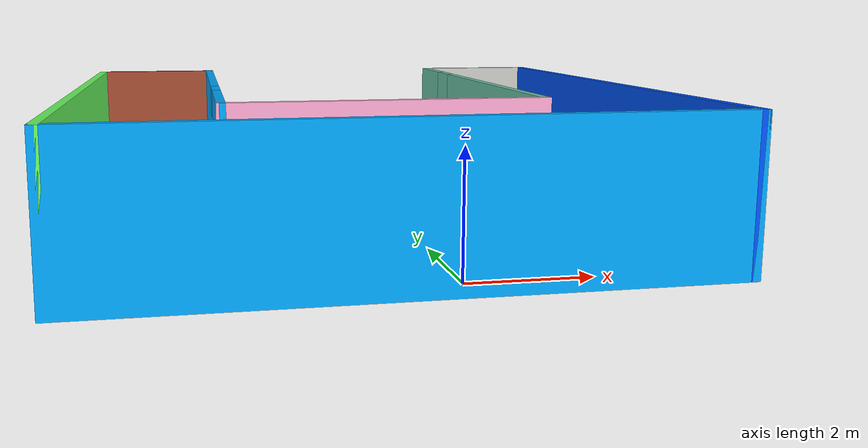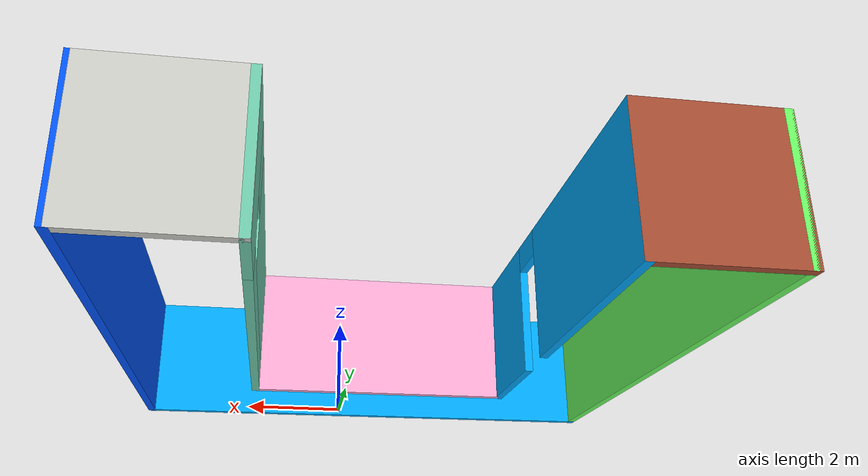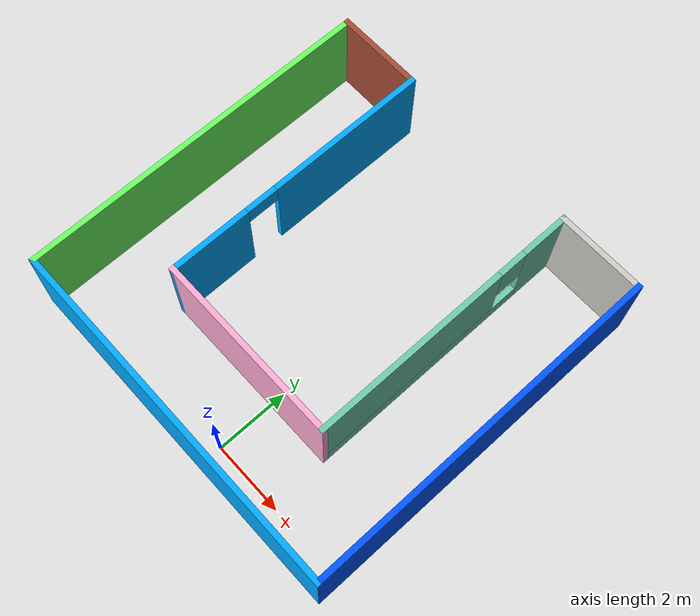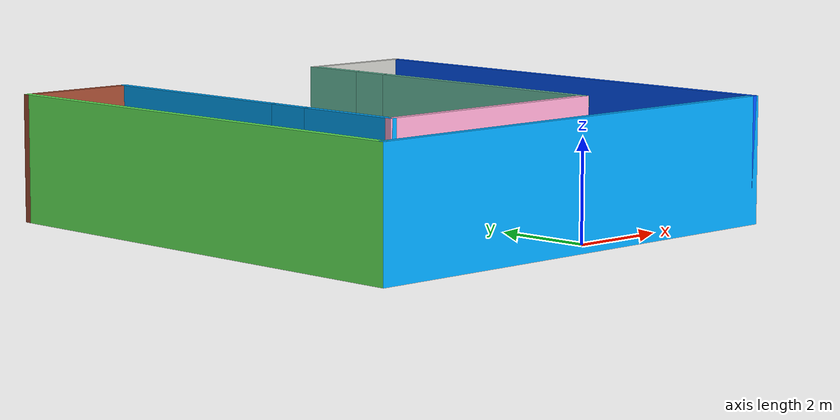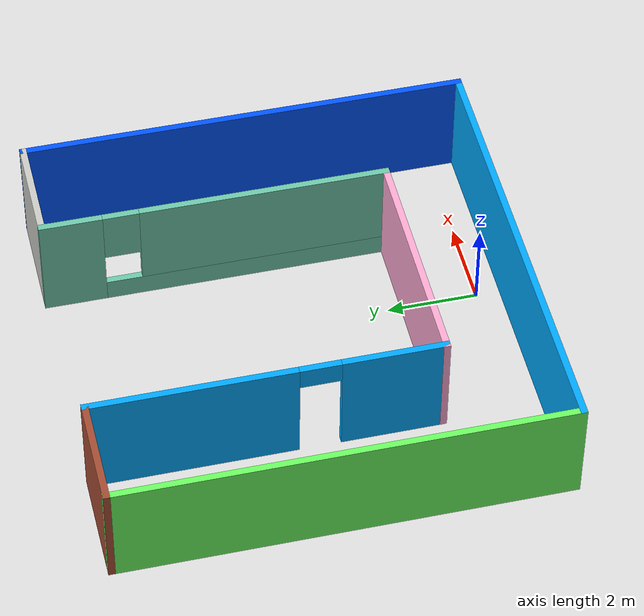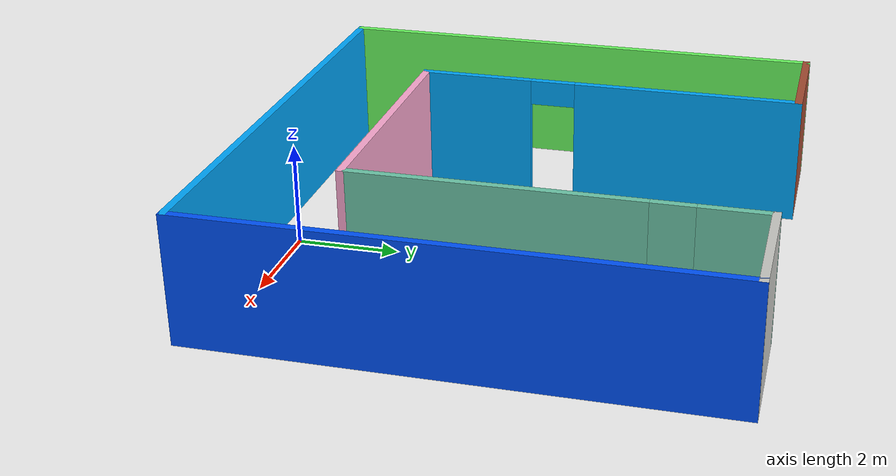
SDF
<?xml version='1.0'?>
<sdf version='1.6'>
  <model name='simpleU'>
    <pose frame=''>-0.747588 4.32082 0 0 -0 0</pose>
    <link name='Wall_10'>
      <pose frame=''>-2.575 1.12481 0 0 0 -1.5708</pose>
      <visual name='Wall_10_Visual_0'>
        <pose frame=''>-1.60329 0 1.25 0 -0 0</pose>
        <geometry>
          <box>
            <size>4.54341 0.15 2.5</size>
          </box>
        </geometry>
        <material>
          <script>
            <uri>file://media/materials/scripts/gazebo.material</uri>
            <name>Gazebo/Grey</name>
          </script>
          <ambient>0 0.666667 1 1</ambient>
        </material>
      </visual>
      <collision name='Wall_10_Collision_0'>
        <geometry>
          <box>
            <size>4.54341 0.15 2.5</size>
          </box>
        </geometry>
        <pose frame=''>-1.60329 0 1.25 0 -0 0</pose>
      </collision>
      <visual name='Wall_10_Visual_1'>
        <pose frame=''>2.72171 0 1.25 0 -0 0</pose>
        <geometry>
          <box>
            <size>2.30659 0.15 2.5</size>
          </box>
        </geometry>
        <material>
          <script>
            <uri>file://media/materials/scripts/gazebo.material</uri>
            <name>Gazebo/Grey</name>
          </script>
          <ambient>0 0.666667 1 1</ambient>
        </material>
      </visual>
      <collision name='Wall_10_Collision_1'>
        <geometry>
          <box>
            <size>2.30659 0.15 2.5</size>
          </box>
        </geometry>
        <pose frame=''>2.72171 0 1.25 0 -0 0</pose>
      </collision>
      <visual name='Wall_10_Visual_2'>
        <pose frame=''>1.11841 0 2.25 0 -0 0</pose>
        <geometry>
          <box>
            <size>0.9 0.15 0.5</size>
          </box>
        </geometry>
        <material>
          <script>
            <uri>file://media/materials/scripts/gazebo.material</uri>
            <name>Gazebo/Grey</name>
          </script>
          <ambient>0 0.666667 1 1</ambient>
        </material>
      </visual>
      <collision name='Wall_10_Collision_2'>
        <geometry>
          <box>
            <size>0.9 0.15 0.5</size>
          </box>
        </geometry>
        <pose frame=''>1.11841 0 2.25 0 -0 0</pose>
      </collision>
    </link>
    <link name='Wall_11'>
      <collision name='Wall_11_Collision'>
        <geometry>
          <box>
            <size>5.3 0.15 2.5</size>
          </box>
        </geometry>
        <pose frame=''>0 0 1.25 0 -0 0</pose>
      </collision>
      <visual name='Wall_11_Visual'>
        <pose frame=''>0 0 1.25 0 -0 0</pose>
        <geometry>
          <box>
            <size>5.3 0.15 2.5</size>
          </box>
        </geometry>
        <material>
          <script>
            <uri>file://media/materials/scripts/gazebo.material</uri>
            <name>Gazebo/Grey</name>
          </script>
          <ambient>1 0.670588 0.831373 1</ambient>
        </material>
      </visual>
      <pose frame=''>-0.000206 -2.67501 0 0 -0 7.1e-05</pose>
    </link>
    <link name='Wall_3'>
      <collision name='Wall_3_Collision'>
        <geometry>
          <box>
            <size>10 0.15 2.5</size>
          </box>
        </geometry>
        <pose frame=''>0 0 1.25 0 -0 0</pose>
      </collision>
      <visual name='Wall_3_Visual'>
        <pose frame=''>0 0 1.25 0 -0 0</pose>
        <geometry>
          <box>
            <size>10 0.15 2.5</size>
          </box>
        </geometry>
        <material>
          <script>
            <uri>file://media/materials/scripts/gazebo.material</uri>
            <name>Gazebo/Grey</name>
          </script>
          <ambient>0.423529 1 0.384314 1</ambient>
        </material>
      </visual>
      <pose frame=''>-4.925 -0.000189 0 0 0 -1.5708</pose>
    </link>
    <link name='Wall_4'>
      <collision name='Wall_4_Collision'>
        <geometry>
          <box>
            <size>10 0.15 2.5</size>
          </box>
        </geometry>
        <pose frame=''>0 0 1.25 0 -0 0</pose>
      </collision>
      <visual name='Wall_4_Visual'>
        <pose frame=''>0 0 1.25 0 -0 0</pose>
        <geometry>
          <box>
            <size>10 0.15 2.5</size>
          </box>
        </geometry>
        <material>
          <script>
            <uri>file://media/materials/scripts/gazebo.material</uri>
            <name>Gazebo/Grey</name>
          </script>
          <ambient>0 0.666667 1 1</ambient>
        </material>
      </visual>
      <pose frame=''>0 -4.92519 0 0 -0 0</pose>
    </link>
    <link name='Wall_5'>
      <collision name='Wall_5_Collision'>
        <geometry>
          <box>
            <size>10 0.15 2.5</size>
          </box>
        </geometry>
        <pose frame=''>0 0 1.25 0 -0 0</pose>
      </collision>
      <visual name='Wall_5_Visual'>
        <pose frame=''>0 0 1.25 0 -0 0</pose>
        <geometry>
          <box>
            <size>10 0.15 2.5</size>
          </box>
        </geometry>
        <material>
          <script>
            <uri>file://media/materials/scripts/gazebo.material</uri>
            <name>Gazebo/Grey</name>
          </script>
          <ambient>0 0.333333 1 1</ambient>
        </material>
      </visual>
      <pose frame=''>4.925 -0.000189 0 0 -0 1.5708</pose>
    </link>
    <link name='Wall_6'>
      <collision name='Wall_6_Collision'>
        <geometry>
          <box>
            <size>2.5 0.15 2.5</size>
          </box>
        </geometry>
        <pose frame=''>0 0 1.25 0 -0 0</pose>
      </collision>
      <visual name='Wall_6_Visual'>
        <pose frame=''>0 0 1.25 0 -0 0</pose>
        <geometry>
          <box>
            <size>2.5 0.15 2.5</size>
          </box>
        </geometry>
        <material>
          <script>
            <uri>file://media/materials/scripts/gazebo.material</uri>
            <name>Gazebo/CeilingTiled</name>
          </script>
          <ambient>1 1 1 1</ambient>
        </material>
      </visual>
      <pose frame=''>3.74979 4.92499 0 0 -0 3.14144</pose>
    </link>
    <link name='Wall_7'>
      <pose frame=''>2.57459 1.12518 0 0 0 -1.5708</pose>
      <visual name='Wall_7_Visual_0'>
        <pose frame=''>-3.17811 0 1.25 0 -0 0</pose>
        <geometry>
          <box>
            <size>1.39378 0.15 2.5</size>
          </box>
        </geometry>
        <material>
          <script>
            <uri>file://media/materials/scripts/gazebo.material</uri>
            <name>Gazebo/Grey</name>
          </script>
          <ambient>0.435294 0.796078 0.67451 1</ambient>
        </material>
      </visual>
      <collision name='Wall_7_Collision_0'>
        <geometry>
          <box>
            <size>1.39378 0.15 2.5</size>
          </box>
        </geometry>
        <pose frame=''>-3.17811 0 1.25 0 -0 0</pose>
      </collision>
      <visual name='Wall_7_Visual_1'>
        <pose frame=''>0.696889 0 0.25 0 -0 0</pose>
        <geometry>
          <box>
            <size>6.35622 0.15 0.5</size>
          </box>
        </geometry>
        <material>
          <script>
            <uri>file://media/materials/scripts/gazebo.material</uri>
            <name>Gazebo/Grey</name>
          </script>
          <ambient>0.435294 0.796078 0.67451 1</ambient>
        </material>
      </visual>
      <collision name='Wall_7_Collision_1'>
        <geometry>
          <box>
            <size>6.35622 0.15 0.5</size>
          </box>
        </geometry>
        <pose frame=''>0.696889 0 0.25 0 -0 0</pose>
      </collision>
      <visual name='Wall_7_Visual_2'>
        <pose frame=''>1.09689 0 1.5 0 -0 0</pose>
        <geometry>
          <box>
            <size>5.55622 0.15 2</size>
          </box>
        </geometry>
        <material>
          <script>
            <uri>file://media/materials/scripts/gazebo.material</uri>
            <name>Gazebo/Grey</name>
          </script>
          <ambient>0.435294 0.796078 0.67451 1</ambient>
        </material>
      </visual>
      <collision name='Wall_7_Collision_2'>
        <geometry>
          <box>
            <size>5.55622 0.15 2</size>
          </box>
        </geometry>
        <pose frame=''>1.09689 0 1.5 0 -0 0</pose>
      </collision>
      <visual name='Wall_7_Visual_3'>
        <pose frame=''>-2.08122 0 1.9 0 -0 0</pose>
        <geometry>
          <box>
            <size>0.8 0.15 1.2</size>
          </box>
        </geometry>
        <material>
          <script>
            <uri>file://media/materials/scripts/gazebo.material</uri>
            <name>Gazebo/Grey</name>
          </script>
          <ambient>0.435294 0.796078 0.67451 1</ambient>
        </material>
      </visual>
      <collision name='Wall_7_Collision_3'>
        <geometry>
          <box>
            <size>0.8 0.15 1.2</size>
          </box>
        </geometry>
        <pose frame=''>-2.08122 0 1.9 0 -0 0</pose>
      </collision>
    </link>
    <link name='Wall_9'>
      <collision name='Wall_9_Collision'>
        <geometry>
          <box>
            <size>2.5 0.15 2.5</size>
          </box>
        </geometry>
        <pose frame=''>0 0 1.25 0 -0 0</pose>
      </collision>
      <visual name='Wall_9_Visual'>
        <pose frame=''>0 0 1.25 0 -0 0</pose>
        <geometry>
          <box>
            <size>2.5 0.15 2.5</size>
          </box>
        </geometry>
        <material>
          <script>
            <uri>file://media/materials/scripts/gazebo.material</uri>
            <name>Gazebo/Bricks</name>
          </script>
          <ambient>1 1 1 1</ambient>
        </material>
      </visual>
      <pose frame=''>-3.75 4.92481 0 0 -0 0</pose>
    </link>
    <static>1</static>
  </model>
</sdf>
